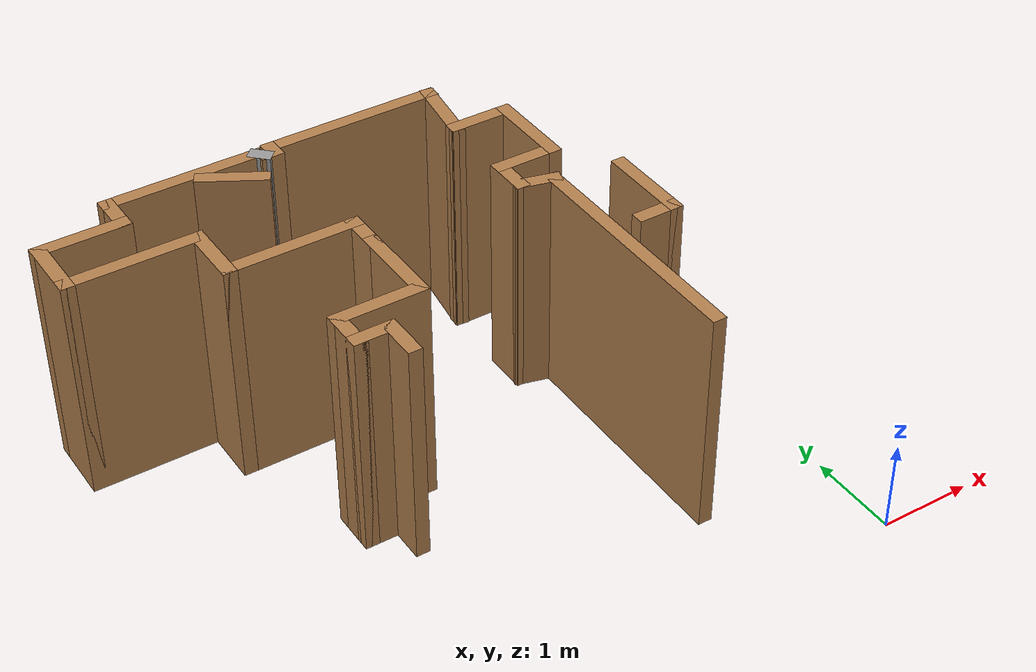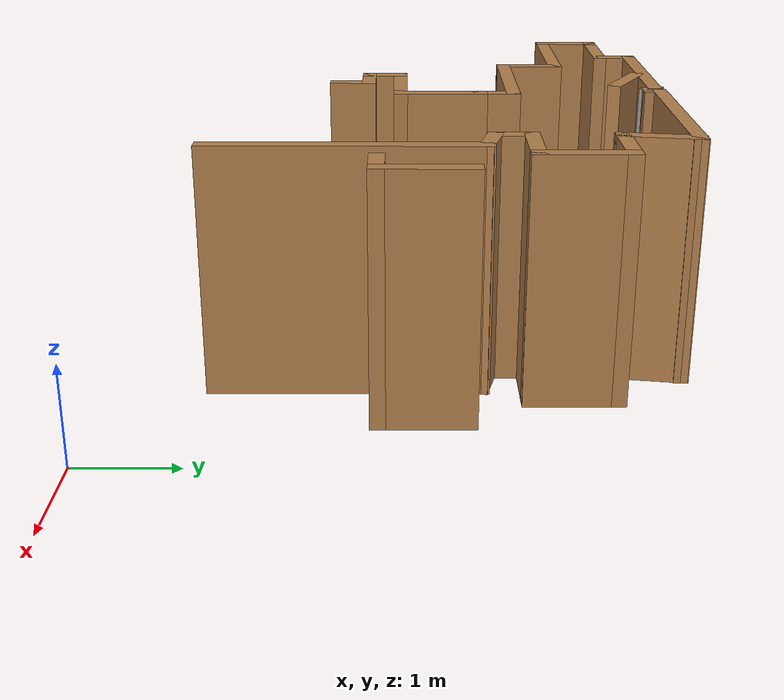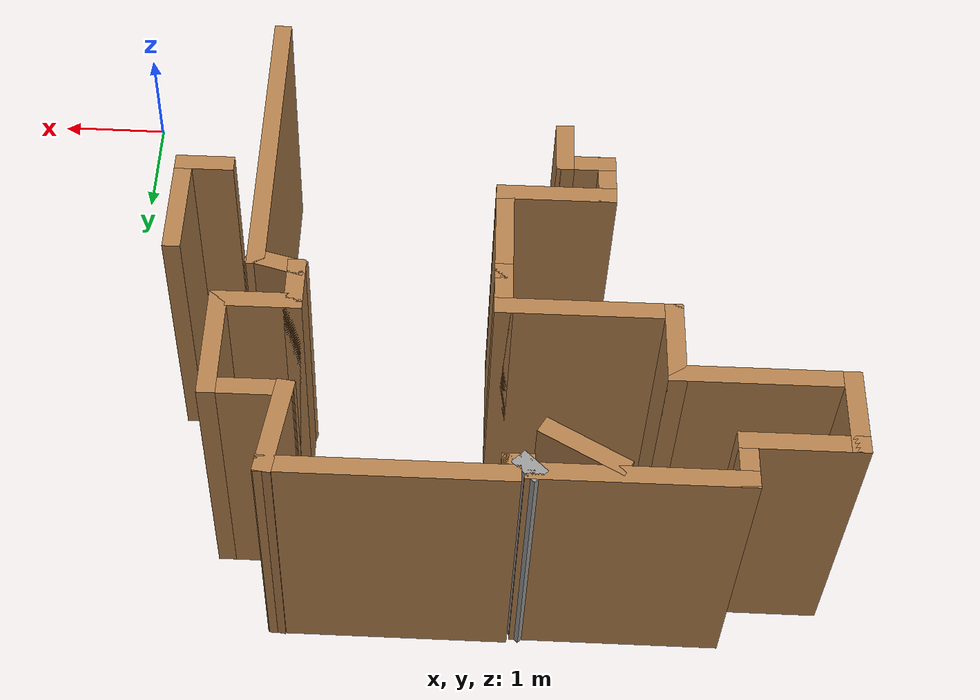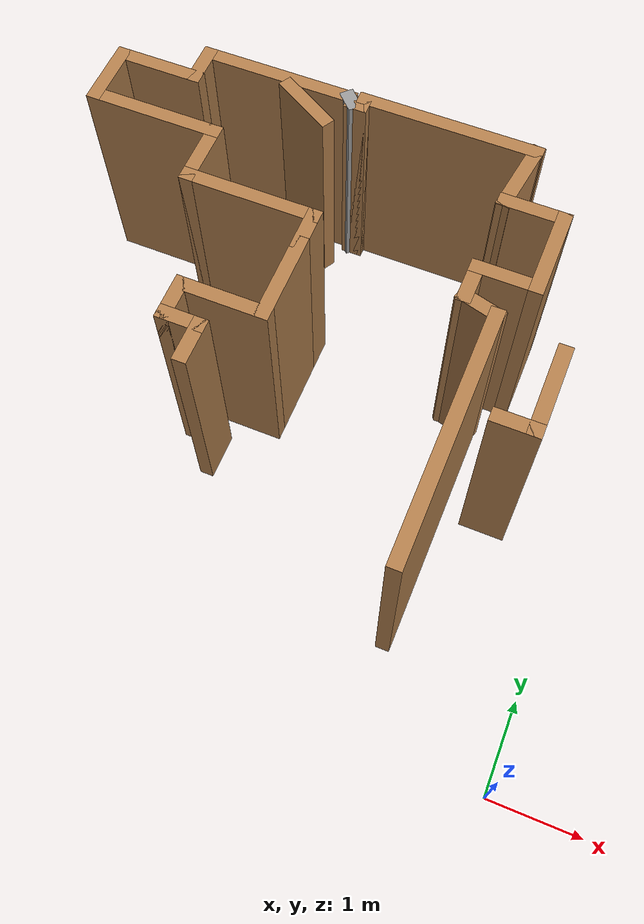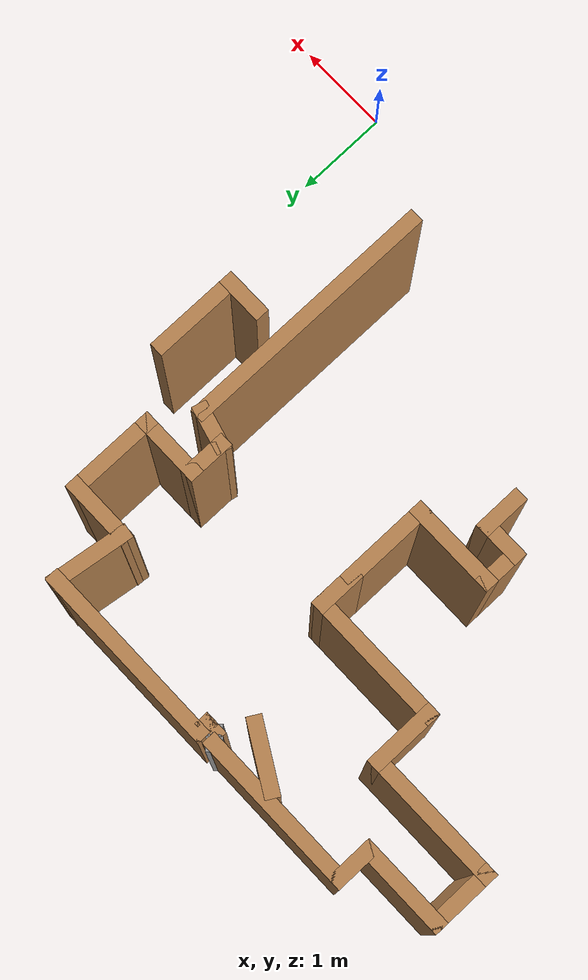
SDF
<sdf version="1.6">
 <model name="map_30">
  <link name="Wall_10">
   <pose>-6.15506 4.97315 0 0 0 -1.5708</pose>
   <visual name="Wall_10_Visual">
    <pose>0 0 1.25 0 -0 0</pose>
    <geometry><box><size>0.75 0.15 2.5</size></box></geometry>
    <material>
     <script><uri>file://media/materials/scripts/gazebo.material</uri><name>Gazebo/Wood</name></script>
     <ambient>1 1 1 1</ambient>
     <shader type="pixel"/>
    </material>
    <meta><layer>0</layer></meta>
   </visual>
   <collision name="Wall_10_Collision">
    <pose>0 0 1.25 0 -0 0</pose>
    <geometry><box><size>0.75 0.15 2.5</size></box></geometry>
    <surface>
     <friction>
      <ode><mu>1</mu><mu2>1</mu2><fdir1>0 0 0</fdir1><slip1>0</slip1><slip2>0</slip2></ode>
      <torsional>
       <coefficient>1</coefficient>
       <patch_radius>0</patch_radius>
       <surface_radius>0</surface_radius>
       <use_patch_radius>1</use_patch_radius>
       <ode><slip>0</slip></ode>
      </torsional>
     </friction>
     <bounce><restitution_coefficient>0</restitution_coefficient><threshold>1e+06</threshold></bounce>
     <contact>
      <collide_without_contact>0</collide_without_contact>
      <collide_without_contact_bitmask>1</collide_without_contact_bitmask>
      <collide_bitmask>1</collide_bitmask>
      <ode>
       <soft_cfm>0</soft_cfm>
       <soft_erp>0.2</soft_erp>
       <kp>1e+13</kp>
       <kd>1</kd>
       <max_vel>0.01</max_vel>
       <min_depth>0</min_depth>
      </ode>
      <bullet>
       <split_impulse>1</split_impulse>
       <split_impulse_penetration_threshold>-0.01</split_impulse_penetration_threshold>
       <soft_cfm>0</soft_cfm>
       <soft_erp>0.2</soft_erp>
       <kp>1e+13</kp>
       <kd>1</kd>
      </bullet>
     </contact>
    </surface>
   </collision>
  </link>
  <link name="Wall_13">
   <pose>-5.48006 4.67315 0 0 -0 0</pose>
   <visual name="Wall_13_Visual">
    <pose>0 0 1.25 0 -0 0</pose>
    <geometry><box><size>1.5 0.15 2.5</size></box></geometry>
    <material>
     <script><uri>file://media/materials/scripts/gazebo.material</uri><name>Gazebo/Wood</name></script>
     <ambient>1 1 1 1</ambient>
     <shader type="pixel"/>
    </material>
    <meta><layer>0</layer></meta>
   </visual>
   <collision name="Wall_13_Collision">
    <pose>0 0 1.25 0 -0 0</pose>
    <geometry><box><size>1.5 0.15 2.5</size></box></geometry>
    <surface>
     <friction>
      <ode><mu>1</mu><mu2>1</mu2><fdir1>0 0 0</fdir1><slip1>0</slip1><slip2>0</slip2></ode>
      <torsional>
       <coefficient>1</coefficient>
       <patch_radius>0</patch_radius>
       <surface_radius>0</surface_radius>
       <use_patch_radius>1</use_patch_radius>
       <ode><slip>0</slip></ode>
      </torsional>
     </friction>
     <bounce><restitution_coefficient>0</restitution_coefficient><threshold>1e+06</threshold></bounce>
     <contact>
      <collide_without_contact>0</collide_without_contact>
      <collide_without_contact_bitmask>1</collide_without_contact_bitmask>
      <collide_bitmask>1</collide_bitmask>
      <ode>
       <soft_cfm>0</soft_cfm>
       <soft_erp>0.2</soft_erp>
       <kp>1e+13</kp>
       <kd>1</kd>
       <max_vel>0.01</max_vel>
       <min_depth>0</min_depth>
      </ode>
      <bullet>
       <split_impulse>1</split_impulse>
       <split_impulse_penetration_threshold>-0.01</split_impulse_penetration_threshold>
       <soft_cfm>0</soft_cfm>
       <soft_erp>0.2</soft_erp>
       <kp>1e+13</kp>
       <kd>1</kd>
      </bullet>
     </contact>
    </surface>
   </collision>
  </link>
  <link name="Wall_14">
   <pose>-4.80506 4.37315 0 0 0 -1.5708</pose>
   <visual name="Wall_14_Visual">
    <pose>0 0 1.25 0 -0 0</pose>
    <geometry><box><size>0.75 0.15 2.5</size></box></geometry>
    <material>
     <script><uri>file://media/materials/scripts/gazebo.material</uri><name>Gazebo/Wood</name></script>
     <ambient>1 1 1 1</ambient>
     <shader type="pixel"/>
    </material>
    <meta><layer>0</layer></meta>
   </visual>
   <collision name="Wall_14_Collision">
    <pose>0 0 1.25 0 -0 0</pose>
    <geometry><box><size>0.75 0.15 2.5</size></box></geometry>
    <surface>
     <friction>
      <ode><mu>1</mu><mu2>1</mu2><fdir1>0 0 0</fdir1><slip1>0</slip1><slip2>0</slip2></ode>
      <torsional>
       <coefficient>1</coefficient>
       <patch_radius>0</patch_radius>
       <surface_radius>0</surface_radius>
       <use_patch_radius>1</use_patch_radius>
       <ode><slip>0</slip></ode>
      </torsional>
     </friction>
     <bounce><restitution_coefficient>0</restitution_coefficient><threshold>1e+06</threshold></bounce>
     <contact>
      <collide_without_contact>0</collide_without_contact>
      <collide_without_contact_bitmask>1</collide_without_contact_bitmask>
      <collide_bitmask>1</collide_bitmask>
      <ode>
       <soft_cfm>0</soft_cfm>
       <soft_erp>0.2</soft_erp>
       <kp>1e+13</kp>
       <kd>1</kd>
       <max_vel>0.01</max_vel>
       <min_depth>0</min_depth>
      </ode>
      <bullet>
       <split_impulse>1</split_impulse>
       <split_impulse_penetration_threshold>-0.01</split_impulse_penetration_threshold>
       <soft_cfm>0</soft_cfm>
       <soft_erp>0.2</soft_erp>
       <kp>1e+13</kp>
       <kd>1</kd>
      </bullet>
     </contact>
    </surface>
   </collision>
  </link>
  <link name="Wall_15">
   <pose>-4.13006 4.07315 0 0 -0 0</pose>
   <visual name="Wall_15_Visual">
    <pose>0 0 1.25 0 -0 0</pose>
    <geometry><box><size>1.5 0.15 2.5</size></box></geometry>
    <material>
     <script><uri>file://media/materials/scripts/gazebo.material</uri><name>Gazebo/Wood</name></script>
     <ambient>1 1 1 1</ambient>
     <shader type="pixel"/>
    </material>
    <meta><layer>0</layer></meta>
   </visual>
   <collision name="Wall_15_Collision">
    <pose>0 0 1.25 0 -0 0</pose>
    <geometry><box><size>1.5 0.15 2.5</size></box></geometry>
    <surface>
     <friction>
      <ode><mu>1</mu><mu2>1</mu2><fdir1>0 0 0</fdir1><slip1>0</slip1><slip2>0</slip2></ode>
      <torsional>
       <coefficient>1</coefficient>
       <patch_radius>0</patch_radius>
       <surface_radius>0</surface_radius>
       <use_patch_radius>1</use_patch_radius>
       <ode><slip>0</slip></ode>
      </torsional>
     </friction>
     <bounce><restitution_coefficient>0</restitution_coefficient><threshold>1e+06</threshold></bounce>
     <contact>
      <collide_without_contact>0</collide_without_contact>
      <collide_without_contact_bitmask>1</collide_without_contact_bitmask>
      <collide_bitmask>1</collide_bitmask>
      <ode>
       <soft_cfm>0</soft_cfm>
       <soft_erp>0.2</soft_erp>
       <kp>1e+13</kp>
       <kd>1</kd>
       <max_vel>0.01</max_vel>
       <min_depth>0</min_depth>
      </ode>
      <bullet>
       <split_impulse>1</split_impulse>
       <split_impulse_penetration_threshold>-0.01</split_impulse_penetration_threshold>
       <soft_cfm>0</soft_cfm>
       <soft_erp>0.2</soft_erp>
       <kp>1e+13</kp>
       <kd>1</kd>
      </bullet>
     </contact>
    </surface>
   </collision>
  </link>
  <link name="Wall_158">
   <pose>-0.744941 3.09118 0 0 0 -1.5708</pose>
   <visual name="Wall_158_Visual">
    <pose>0 0 1.25 0 -0 0</pose>
    <geometry><box><size>1 0.15 2.5</size></box></geometry>
    <material>
     <script><uri>file://media/materials/scripts/gazebo.material</uri><name>Gazebo/Wood</name></script>
     <ambient>1 1 1 1</ambient>
     <shader type="pixel"/>
    </material>
    <meta><layer>0</layer></meta>
   </visual>
   <collision name="Wall_158_Collision">
    <pose>0 0 1.25 0 -0 0</pose>
    <geometry><box><size>1 0.15 2.5</size></box></geometry>
    <surface>
     <friction>
      <ode><mu>1</mu><mu2>1</mu2><fdir1>0 0 0</fdir1><slip1>0</slip1><slip2>0</slip2></ode>
      <torsional>
       <coefficient>1</coefficient>
       <patch_radius>0</patch_radius>
       <surface_radius>0</surface_radius>
       <use_patch_radius>1</use_patch_radius>
       <ode><slip>0</slip></ode>
      </torsional>
     </friction>
     <bounce><restitution_coefficient>0</restitution_coefficient><threshold>1e+06</threshold></bounce>
     <contact>
      <collide_without_contact>0</collide_without_contact>
      <collide_without_contact_bitmask>1</collide_without_contact_bitmask>
      <collide_bitmask>1</collide_bitmask>
      <ode>
       <soft_cfm>0</soft_cfm>
       <soft_erp>0.2</soft_erp>
       <kp>1e+13</kp>
       <kd>1</kd>
       <max_vel>0.01</max_vel>
       <min_depth>0</min_depth>
      </ode>
      <bullet>
       <split_impulse>1</split_impulse>
       <split_impulse_penetration_threshold>-0.01</split_impulse_penetration_threshold>
       <soft_cfm>0</soft_cfm>
       <soft_erp>0.2</soft_erp>
       <kp>1e+13</kp>
       <kd>1</kd>
      </bullet>
     </contact>
    </surface>
   </collision>
  </link>
  <link name="Wall_16">
   <pose>-3.45506 3.89815 0 0 0 -1.5708</pose>
   <visual name="Wall_16_Visual">
    <pose>0 0 1.25 0 -0 0</pose>
    <geometry><box><size>0.5 0.15 2.5</size></box></geometry>
    <material>
     <script><uri>file://media/materials/scripts/gazebo.material</uri><name>Gazebo/Wood</name></script>
     <ambient>1 1 1 1</ambient>
     <shader type="pixel"/>
    </material>
    <meta><layer>0</layer></meta>
   </visual>
   <collision name="Wall_16_Collision">
    <pose>0 0 1.25 0 -0 0</pose>
    <geometry><box><size>0.5 0.15 2.5</size></box></geometry>
    <surface>
     <friction>
      <ode><mu>1</mu><mu2>1</mu2><fdir1>0 0 0</fdir1><slip1>0</slip1><slip2>0</slip2></ode>
      <torsional>
       <coefficient>1</coefficient>
       <patch_radius>0</patch_radius>
       <surface_radius>0</surface_radius>
       <use_patch_radius>1</use_patch_radius>
       <ode><slip>0</slip></ode>
      </torsional>
     </friction>
     <bounce><restitution_coefficient>0</restitution_coefficient><threshold>1e+06</threshold></bounce>
     <contact>
      <collide_without_contact>0</collide_without_contact>
      <collide_without_contact_bitmask>1</collide_without_contact_bitmask>
      <collide_bitmask>1</collide_bitmask>
      <ode>
       <soft_cfm>0</soft_cfm>
       <soft_erp>0.2</soft_erp>
       <kp>1e+13</kp>
       <kd>1</kd>
       <max_vel>0.01</max_vel>
       <min_depth>0</min_depth>
      </ode>
      <bullet>
       <split_impulse>1</split_impulse>
       <split_impulse_penetration_threshold>-0.01</split_impulse_penetration_threshold>
       <soft_cfm>0</soft_cfm>
       <soft_erp>0.2</soft_erp>
       <kp>1e+13</kp>
       <kd>1</kd>
      </bullet>
     </contact>
    </surface>
   </collision>
  </link>
  <link name="Wall_161">
   <pose>-0.919941 2.66618 0 0 -0 3.14159</pose>
   <visual name="Wall_161_Visual">
    <pose>0 0 1.25 0 -0 0</pose>
    <geometry><box><size>0.5 0.15 2.5</size></box></geometry>
    <material>
     <script><uri>file://media/materials/scripts/gazebo.material</uri><name>Gazebo/Wood</name></script>
     <ambient>1 1 1 1</ambient>
     <shader type="pixel"/>
    </material>
    <meta><layer>0</layer></meta>
   </visual>
   <collision name="Wall_161_Collision">
    <pose>0 0 1.25 0 -0 0</pose>
    <geometry><box><size>0.5 0.15 2.5</size></box></geometry>
    <surface>
     <friction>
      <ode><mu>1</mu><mu2>1</mu2><fdir1>0 0 0</fdir1><slip1>0</slip1><slip2>0</slip2></ode>
      <torsional>
       <coefficient>1</coefficient>
       <patch_radius>0</patch_radius>
       <surface_radius>0</surface_radius>
       <use_patch_radius>1</use_patch_radius>
       <ode><slip>0</slip></ode>
      </torsional>
     </friction>
     <bounce><restitution_coefficient>0</restitution_coefficient><threshold>1e+06</threshold></bounce>
     <contact>
      <collide_without_contact>0</collide_without_contact>
      <collide_without_contact_bitmask>1</collide_without_contact_bitmask>
      <collide_bitmask>1</collide_bitmask>
      <ode>
       <soft_cfm>0</soft_cfm>
       <soft_erp>0.2</soft_erp>
       <kp>1e+13</kp>
       <kd>1</kd>
       <max_vel>0.01</max_vel>
       <min_depth>0</min_depth>
      </ode>
      <bullet>
       <split_impulse>1</split_impulse>
       <split_impulse_penetration_threshold>-0.01</split_impulse_penetration_threshold>
       <soft_cfm>0</soft_cfm>
       <soft_erp>0.2</soft_erp>
       <kp>1e+13</kp>
       <kd>1</kd>
      </bullet>
     </contact>
    </surface>
   </collision>
  </link>
  <link name="Wall_164">
   <pose>-1.44494 2.36618 0 0 -0 1.5708</pose>
   <visual name="Wall_164_Visual">
    <pose>0 0 1.25 0 -0 0</pose>
    <geometry><box><size>2.75 0.15 2.5</size></box></geometry>
    <material>
     <script><uri>file://media/materials/scripts/gazebo.material</uri><name>Gazebo/Wood</name></script>
     <ambient>1 1 1 1</ambient>
     <shader type="pixel"/>
    </material>
    <meta><layer>0</layer></meta>
   </visual>
   <collision name="Wall_164_Collision">
    <pose>0 0 1.25 0 -0 0</pose>
    <geometry><box><size>2.75 0.15 2.5</size></box></geometry>
    <surface>
     <friction>
      <ode><mu>1</mu><mu2>1</mu2><fdir1>0 0 0</fdir1><slip1>0</slip1><slip2>0</slip2></ode>
      <torsional>
       <coefficient>1</coefficient>
       <patch_radius>0</patch_radius>
       <surface_radius>0</surface_radius>
       <use_patch_radius>1</use_patch_radius>
       <ode><slip>0</slip></ode>
      </torsional>
     </friction>
     <bounce><restitution_coefficient>0</restitution_coefficient><threshold>1e+06</threshold></bounce>
     <contact>
      <collide_without_contact>0</collide_without_contact>
      <collide_without_contact_bitmask>1</collide_without_contact_bitmask>
      <collide_bitmask>1</collide_bitmask>
      <ode>
       <soft_cfm>0</soft_cfm>
       <soft_erp>0.2</soft_erp>
       <kp>1e+13</kp>
       <kd>1</kd>
       <max_vel>0.01</max_vel>
       <min_depth>0</min_depth>
      </ode>
      <bullet>
       <split_impulse>1</split_impulse>
       <split_impulse_penetration_threshold>-0.01</split_impulse_penetration_threshold>
       <soft_cfm>0</soft_cfm>
       <soft_erp>0.2</soft_erp>
       <kp>1e+13</kp>
       <kd>1</kd>
      </bullet>
     </contact>
    </surface>
   </collision>
  </link>
  <link name="Wall_165">
   <pose>-1.61398 3.71148 0 0 -0 2.87979</pose>
   <visual name="Wall_165_Visual">
    <pose>0 0 1.25 0 -0 0</pose>
    <geometry><box><size>0.5 0.15 2.5</size></box></geometry>
    <material>
     <script><uri>file://media/materials/scripts/gazebo.material</uri><name>Gazebo/Wood</name></script>
     <ambient>1 1 1 1</ambient>
     <shader type="pixel"/>
    </material>
    <meta><layer>0</layer></meta>
   </visual>
   <collision name="Wall_165_Collision">
    <pose>0 0 1.25 0 -0 0</pose>
    <geometry><box><size>0.5 0.15 2.5</size></box></geometry>
    <surface>
     <friction>
      <ode><mu>1</mu><mu2>1</mu2><fdir1>0 0 0</fdir1><slip1>0</slip1><slip2>0</slip2></ode>
      <torsional>
       <coefficient>1</coefficient>
       <patch_radius>0</patch_radius>
       <surface_radius>0</surface_radius>
       <use_patch_radius>1</use_patch_radius>
       <ode><slip>0</slip></ode>
      </torsional>
     </friction>
     <bounce><restitution_coefficient>0</restitution_coefficient><threshold>1e+06</threshold></bounce>
     <contact>
      <collide_without_contact>0</collide_without_contact>
      <collide_without_contact_bitmask>1</collide_without_contact_bitmask>
      <collide_bitmask>1</collide_bitmask>
      <ode>
       <soft_cfm>0</soft_cfm>
       <soft_erp>0.2</soft_erp>
       <kp>1e+13</kp>
       <kd>1</kd>
       <max_vel>0.01</max_vel>
       <min_depth>0</min_depth>
      </ode>
      <bullet>
       <split_impulse>1</split_impulse>
       <split_impulse_penetration_threshold>-0.01</split_impulse_penetration_threshold>
       <soft_cfm>0</soft_cfm>
       <soft_erp>0.2</soft_erp>
       <kp>1e+13</kp>
       <kd>1</kd>
      </bullet>
     </contact>
    </surface>
   </collision>
  </link>
  <link name="Wall_166">
   <pose>-1.78302 3.93177 0 0 -0 1.5708</pose>
   <visual name="Wall_166_Visual">
    <pose>0 0 1.25 0 -0 0</pose>
    <geometry><box><size>0.5 0.15 2.5</size></box></geometry>
    <material>
     <script><uri>file://media/materials/scripts/gazebo.material</uri><name>Gazebo/Wood</name></script>
     <ambient>1 1 1 1</ambient>
     <shader type="pixel"/>
    </material>
    <meta><layer>0</layer></meta>
   </visual>
   <collision name="Wall_166_Collision">
    <pose>0 0 1.25 0 -0 0</pose>
    <geometry><box><size>0.5 0.15 2.5</size></box></geometry>
    <surface>
     <friction>
      <ode><mu>1</mu><mu2>1</mu2><fdir1>0 0 0</fdir1><slip1>0</slip1><slip2>0</slip2></ode>
      <torsional>
       <coefficient>1</coefficient>
       <patch_radius>0</patch_radius>
       <surface_radius>0</surface_radius>
       <use_patch_radius>1</use_patch_radius>
       <ode><slip>0</slip></ode>
      </torsional>
     </friction>
     <bounce><restitution_coefficient>0</restitution_coefficient><threshold>1e+06</threshold></bounce>
     <contact>
      <collide_without_contact>0</collide_without_contact>
      <collide_without_contact_bitmask>1</collide_without_contact_bitmask>
      <collide_bitmask>1</collide_bitmask>
      <ode>
       <soft_cfm>0</soft_cfm>
       <soft_erp>0.2</soft_erp>
       <kp>1e+13</kp>
       <kd>1</kd>
       <max_vel>0.01</max_vel>
       <min_depth>0</min_depth>
      </ode>
      <bullet>
       <split_impulse>1</split_impulse>
       <split_impulse_penetration_threshold>-0.01</split_impulse_penetration_threshold>
       <soft_cfm>0</soft_cfm>
       <soft_erp>0.2</soft_erp>
       <kp>1e+13</kp>
       <kd>1</kd>
      </bullet>
     </contact>
    </surface>
   </collision>
  </link>
  <link name="Wall_171">
   <pose>-1.48301 4.10677 0 0 -0 0</pose>
   <visual name="Wall_171_Visual">
    <pose>0 0 1.25 0 -0 0</pose>
    <geometry><box><size>0.75 0.15 2.5</size></box></geometry>
    <material>
     <script><uri>file://media/materials/scripts/gazebo.material</uri><name>Gazebo/Wood</name></script>
     <ambient>1 1 1 1</ambient>
     <shader type="pixel"/>
    </material>
    <meta><layer>0</layer></meta>
   </visual>
   <collision name="Wall_171_Collision">
    <pose>0 0 1.25 0 -0 0</pose>
    <geometry><box><size>0.75 0.15 2.5</size></box></geometry>
    <surface>
     <friction>
      <ode><mu>1</mu><mu2>1</mu2><fdir1>0 0 0</fdir1><slip1>0</slip1><slip2>0</slip2></ode>
      <torsional>
       <coefficient>1</coefficient>
       <patch_radius>0</patch_radius>
       <surface_radius>0</surface_radius>
       <use_patch_radius>1</use_patch_radius>
       <ode><slip>0</slip></ode>
      </torsional>
     </friction>
     <bounce><restitution_coefficient>0</restitution_coefficient><threshold>1e+06</threshold></bounce>
     <contact>
      <collide_without_contact>0</collide_without_contact>
      <collide_without_contact_bitmask>1</collide_without_contact_bitmask>
      <collide_bitmask>1</collide_bitmask>
      <ode>
       <soft_cfm>0</soft_cfm>
       <soft_erp>0.2</soft_erp>
       <kp>1e+13</kp>
       <kd>1</kd>
       <max_vel>0.01</max_vel>
       <min_depth>0</min_depth>
      </ode>
      <bullet>
       <split_impulse>1</split_impulse>
       <split_impulse_penetration_threshold>-0.01</split_impulse_penetration_threshold>
       <soft_cfm>0</soft_cfm>
       <soft_erp>0.2</soft_erp>
       <kp>1e+13</kp>
       <kd>1</kd>
      </bullet>
     </contact>
    </surface>
   </collision>
  </link>
  <link name="Wall_172">
   <pose>-1.18301 4.53177 0 0 -0 1.5708</pose>
   <visual name="Wall_172_Visual">
    <pose>0 0 1.25 0 -0 0</pose>
    <geometry><box><size>1 0.15 2.5</size></box></geometry>
    <material>
     <script><uri>file://media/materials/scripts/gazebo.material</uri><name>Gazebo/Wood</name></script>
     <ambient>1 1 1 1</ambient>
     <shader type="pixel"/>
    </material>
    <meta><layer>0</layer></meta>
   </visual>
   <collision name="Wall_172_Collision">
    <pose>0 0 1.25 0 -0 0</pose>
    <geometry><box><size>1 0.15 2.5</size></box></geometry>
    <surface>
     <friction>
      <ode><mu>1</mu><mu2>1</mu2><fdir1>0 0 0</fdir1><slip1>0</slip1><slip2>0</slip2></ode>
      <torsional>
       <coefficient>1</coefficient>
       <patch_radius>0</patch_radius>
       <surface_radius>0</surface_radius>
       <use_patch_radius>1</use_patch_radius>
       <ode><slip>0</slip></ode>
      </torsional>
     </friction>
     <bounce><restitution_coefficient>0</restitution_coefficient><threshold>1e+06</threshold></bounce>
     <contact>
      <collide_without_contact>0</collide_without_contact>
      <collide_without_contact_bitmask>1</collide_without_contact_bitmask>
      <collide_bitmask>1</collide_bitmask>
      <ode>
       <soft_cfm>0</soft_cfm>
       <soft_erp>0.2</soft_erp>
       <kp>1e+13</kp>
       <kd>1</kd>
       <max_vel>0.01</max_vel>
       <min_depth>0</min_depth>
      </ode>
      <bullet>
       <split_impulse>1</split_impulse>
       <split_impulse_penetration_threshold>-0.01</split_impulse_penetration_threshold>
       <soft_cfm>0</soft_cfm>
       <soft_erp>0.2</soft_erp>
       <kp>1e+13</kp>
       <kd>1</kd>
      </bullet>
     </contact>
    </surface>
   </collision>
  </link>
  <link name="Wall_173">
   <pose>-1.48301 4.95677 0 0 -0 3.14159</pose>
   <visual name="Wall_173_Visual">
    <pose>0 0 1.25 0 -0 0</pose>
    <geometry><box><size>0.75 0.15 2.5</size></box></geometry>
    <material>
     <script><uri>file://media/materials/scripts/gazebo.material</uri><name>Gazebo/Wood</name></script>
     <ambient>1 1 1 1</ambient>
     <shader type="pixel"/>
    </material>
    <meta><layer>0</layer></meta>
   </visual>
   <collision name="Wall_173_Collision">
    <pose>0 0 1.25 0 -0 0</pose>
    <geometry><box><size>0.75 0.15 2.5</size></box></geometry>
    <surface>
     <friction>
      <ode><mu>1</mu><mu2>1</mu2><fdir1>0 0 0</fdir1><slip1>0</slip1><slip2>0</slip2></ode>
      <torsional>
       <coefficient>1</coefficient>
       <patch_radius>0</patch_radius>
       <surface_radius>0</surface_radius>
       <use_patch_radius>1</use_patch_radius>
       <ode><slip>0</slip></ode>
      </torsional>
     </friction>
     <bounce><restitution_coefficient>0</restitution_coefficient><threshold>1e+06</threshold></bounce>
     <contact>
      <collide_without_contact>0</collide_without_contact>
      <collide_without_contact_bitmask>1</collide_without_contact_bitmask>
      <collide_bitmask>1</collide_bitmask>
      <ode>
       <soft_cfm>0</soft_cfm>
       <soft_erp>0.2</soft_erp>
       <kp>1e+13</kp>
       <kd>1</kd>
       <max_vel>0.01</max_vel>
       <min_depth>0</min_depth>
      </ode>
      <bullet>
       <split_impulse>1</split_impulse>
       <split_impulse_penetration_threshold>-0.01</split_impulse_penetration_threshold>
       <soft_cfm>0</soft_cfm>
       <soft_erp>0.2</soft_erp>
       <kp>1e+13</kp>
       <kd>1</kd>
      </bullet>
     </contact>
    </surface>
   </collision>
  </link>
  <link name="Wall_174">
   <pose>-1.73368 5.3046 0 0 -0 1.42991</pose>
   <visual name="Wall_174_Visual">
    <pose>0 0 1.25 0 -0 0</pose>
    <geometry><box><size>0.852629 0.15 2.5</size></box></geometry>
    <material>
     <script><uri>file://media/materials/scripts/gazebo.material</uri><name>Gazebo/Wood</name></script>
     <ambient>1 1 1 1</ambient>
     <shader type="pixel"/>
    </material>
    <meta><layer>0</layer></meta>
   </visual>
   <collision name="Wall_174_Collision">
    <pose>0 0 1.25 0 -0 0</pose>
    <geometry><box><size>0.852629 0.15 2.5</size></box></geometry>
    <surface>
     <friction>
      <ode><mu>1</mu><mu2>1</mu2><fdir1>0 0 0</fdir1><slip1>0</slip1><slip2>0</slip2></ode>
      <torsional>
       <coefficient>1</coefficient>
       <patch_radius>0</patch_radius>
       <surface_radius>0</surface_radius>
       <use_patch_radius>1</use_patch_radius>
       <ode><slip>0</slip></ode>
      </torsional>
     </friction>
     <bounce><restitution_coefficient>0</restitution_coefficient><threshold>1e+06</threshold></bounce>
     <contact>
      <collide_without_contact>0</collide_without_contact>
      <collide_without_contact_bitmask>1</collide_without_contact_bitmask>
      <collide_bitmask>1</collide_bitmask>
      <ode>
       <soft_cfm>0</soft_cfm>
       <soft_erp>0.2</soft_erp>
       <kp>1e+13</kp>
       <kd>1</kd>
       <max_vel>0.01</max_vel>
       <min_depth>0</min_depth>
      </ode>
      <bullet>
       <split_impulse>1</split_impulse>
       <split_impulse_penetration_threshold>-0.01</split_impulse_penetration_threshold>
       <soft_cfm>0</soft_cfm>
       <soft_erp>0.2</soft_erp>
       <kp>1e+13</kp>
       <kd>1</kd>
      </bullet>
     </contact>
    </surface>
   </collision>
  </link>
  <link name="Wall_182">
   <pose>-4.08456 5.38678 0 0 0 -0.523599</pose>
   <visual name="Wall_182_Visual">
    <pose>0 0 1.25 0 -0 0</pose>
    <geometry><box><size>0.75 0.15 2.5</size></box></geometry>
    <material>
     <script><uri>file://media/materials/scripts/gazebo.material</uri><name>Gazebo/Wood</name></script>
     <ambient>1 1 1 1</ambient>
     <shader type="pixel"/>
    </material>
    <meta><layer>0</layer></meta>
   </visual>
   <collision name="Wall_182_Collision">
    <pose>0 0 1.25 0 -0 0</pose>
    <geometry><box><size>0.75 0.15 2.5</size></box></geometry>
    <surface>
     <friction>
      <ode><mu>1</mu><mu2>1</mu2><fdir1>0 0 0</fdir1><slip1>0</slip1><slip2>0</slip2></ode>
      <torsional>
       <coefficient>1</coefficient>
       <patch_radius>0</patch_radius>
       <surface_radius>0</surface_radius>
       <use_patch_radius>1</use_patch_radius>
       <ode><slip>0</slip></ode>
      </torsional>
     </friction>
     <bounce><restitution_coefficient>0</restitution_coefficient><threshold>1e+06</threshold></bounce>
     <contact>
      <collide_without_contact>0</collide_without_contact>
      <collide_without_contact_bitmask>1</collide_without_contact_bitmask>
      <collide_bitmask>1</collide_bitmask>
      <ode>
       <soft_cfm>0</soft_cfm>
       <soft_erp>0.2</soft_erp>
       <kp>1e+13</kp>
       <kd>1</kd>
       <max_vel>0.01</max_vel>
       <min_depth>0</min_depth>
      </ode>
      <bullet>
       <split_impulse>1</split_impulse>
       <split_impulse_penetration_threshold>-0.01</split_impulse_penetration_threshold>
       <soft_cfm>0</soft_cfm>
       <soft_erp>0.2</soft_erp>
       <kp>1e+13</kp>
       <kd>1</kd>
      </bullet>
     </contact>
    </surface>
   </collision>
  </link>
  <link name="Wall_21">
   <pose>-3.45506 3.29815 0 0 0 -1.5708</pose>
   <visual name="Wall_21_Visual">
    <pose>0 0 1.25 0 -0 0</pose>
    <geometry><box><size>1 0.15 2.5</size></box></geometry>
    <material>
     <script><uri>file://media/materials/scripts/gazebo.material</uri><name>Gazebo/Wood</name></script>
     <ambient>1 1 1 1</ambient>
     <shader type="pixel"/>
    </material>
    <meta><layer>0</layer></meta>
   </visual>
   <collision name="Wall_21_Collision">
    <pose>0 0 1.25 0 -0 0</pose>
    <geometry><box><size>1 0.15 2.5</size></box></geometry>
    <surface>
     <friction>
      <ode><mu>1</mu><mu2>1</mu2><fdir1>0 0 0</fdir1><slip1>0</slip1><slip2>0</slip2></ode>
      <torsional>
       <coefficient>1</coefficient>
       <patch_radius>0</patch_radius>
       <surface_radius>0</surface_radius>
       <use_patch_radius>1</use_patch_radius>
       <ode><slip>0</slip></ode>
      </torsional>
     </friction>
     <bounce><restitution_coefficient>0</restitution_coefficient><threshold>1e+06</threshold></bounce>
     <contact>
      <collide_without_contact>0</collide_without_contact>
      <collide_without_contact_bitmask>1</collide_without_contact_bitmask>
      <collide_bitmask>1</collide_bitmask>
      <ode>
       <soft_cfm>0</soft_cfm>
       <soft_erp>0.2</soft_erp>
       <kp>1e+13</kp>
       <kd>1</kd>
       <max_vel>0.01</max_vel>
       <min_depth>0</min_depth>
      </ode>
      <bullet>
       <split_impulse>1</split_impulse>
       <split_impulse_penetration_threshold>-0.01</split_impulse_penetration_threshold>
       <soft_cfm>0</soft_cfm>
       <soft_erp>0.2</soft_erp>
       <kp>1e+13</kp>
       <kd>1</kd>
      </bullet>
     </contact>
    </surface>
   </collision>
  </link>
  <link name="Wall_22">
   <pose>-3.88006 2.87315 0 0 -0 3.14159</pose>
   <visual name="Wall_22_Visual">
    <pose>0 0 1.25 0 -0 0</pose>
    <geometry><box><size>1 0.15 2.5</size></box></geometry>
    <material>
     <script><uri>file://media/materials/scripts/gazebo.material</uri><name>Gazebo/Wood</name></script>
     <ambient>1 1 1 1</ambient>
     <shader type="pixel"/>
    </material>
    <meta><layer>0</layer></meta>
   </visual>
   <collision name="Wall_22_Collision">
    <pose>0 0 1.25 0 -0 0</pose>
    <geometry><box><size>1 0.15 2.5</size></box></geometry>
    <surface>
     <friction>
      <ode><mu>1</mu><mu2>1</mu2><fdir1>0 0 0</fdir1><slip1>0</slip1><slip2>0</slip2></ode>
      <torsional>
       <coefficient>1</coefficient>
       <patch_radius>0</patch_radius>
       <surface_radius>0</surface_radius>
       <use_patch_radius>1</use_patch_radius>
       <ode><slip>0</slip></ode>
      </torsional>
     </friction>
     <bounce><restitution_coefficient>0</restitution_coefficient><threshold>1e+06</threshold></bounce>
     <contact>
      <collide_without_contact>0</collide_without_contact>
      <collide_without_contact_bitmask>1</collide_without_contact_bitmask>
      <collide_bitmask>1</collide_bitmask>
      <ode>
       <soft_cfm>0</soft_cfm>
       <soft_erp>0.2</soft_erp>
       <kp>1e+13</kp>
       <kd>1</kd>
       <max_vel>0.01</max_vel>
       <min_depth>0</min_depth>
      </ode>
      <bullet>
       <split_impulse>1</split_impulse>
       <split_impulse_penetration_threshold>-0.01</split_impulse_penetration_threshold>
       <soft_cfm>0</soft_cfm>
       <soft_erp>0.2</soft_erp>
       <kp>1e+13</kp>
       <kd>1</kd>
      </bullet>
     </contact>
    </surface>
   </collision>
  </link>
  <link name="Wall_23">
   <pose>-4.30506 2.69815 0 0 0 -1.5708</pose>
   <visual name="Wall_23_Visual">
    <pose>0 0 1.25 0 -0 0</pose>
    <geometry><box><size>0.5 0.15 2.5</size></box></geometry>
    <material>
     <script><uri>file://media/materials/scripts/gazebo.material</uri><name>Gazebo/Wood</name></script>
     <ambient>1 1 1 1</ambient>
     <shader type="pixel"/>
    </material>
    <meta><layer>0</layer></meta>
   </visual>
   <collision name="Wall_23_Collision">
    <pose>0 0 1.25 0 -0 0</pose>
    <geometry><box><size>0.5 0.15 2.5</size></box></geometry>
    <surface>
     <friction>
      <ode><mu>1</mu><mu2>1</mu2><fdir1>0 0 0</fdir1><slip1>0</slip1><slip2>0</slip2></ode>
      <torsional>
       <coefficient>1</coefficient>
       <patch_radius>0</patch_radius>
       <surface_radius>0</surface_radius>
       <use_patch_radius>1</use_patch_radius>
       <ode><slip>0</slip></ode>
      </torsional>
     </friction>
     <bounce><restitution_coefficient>0</restitution_coefficient><threshold>1e+06</threshold></bounce>
     <contact>
      <collide_without_contact>0</collide_without_contact>
      <collide_without_contact_bitmask>1</collide_without_contact_bitmask>
      <collide_bitmask>1</collide_bitmask>
      <ode>
       <soft_cfm>0</soft_cfm>
       <soft_erp>0.2</soft_erp>
       <kp>1e+13</kp>
       <kd>1</kd>
       <max_vel>0.01</max_vel>
       <min_depth>0</min_depth>
      </ode>
      <bullet>
       <split_impulse>1</split_impulse>
       <split_impulse_penetration_threshold>-0.01</split_impulse_penetration_threshold>
       <soft_cfm>0</soft_cfm>
       <soft_erp>0.2</soft_erp>
       <kp>1e+13</kp>
       <kd>1</kd>
      </bullet>
     </contact>
    </surface>
   </collision>
  </link>
  <link name="Wall_24">
   <pose>-4.13006 2.52315 0 0 -0 0</pose>
   <visual name="Wall_24_Visual">
    <pose>0 0 1.25 0 -0 0</pose>
    <geometry><box><size>0.5 0.15 2.5</size></box></geometry>
    <material>
     <script><uri>file://media/materials/scripts/gazebo.material</uri><name>Gazebo/Wood</name></script>
     <ambient>1 1 1 1</ambient>
     <shader type="pixel"/>
    </material>
    <meta><layer>0</layer></meta>
   </visual>
   <collision name="Wall_24_Collision">
    <pose>0 0 1.25 0 -0 0</pose>
    <geometry><box><size>0.5 0.15 2.5</size></box></geometry>
    <surface>
     <friction>
      <ode><mu>1</mu><mu2>1</mu2><fdir1>0 0 0</fdir1><slip1>0</slip1><slip2>0</slip2></ode>
      <torsional>
       <coefficient>1</coefficient>
       <patch_radius>0</patch_radius>
       <surface_radius>0</surface_radius>
       <use_patch_radius>1</use_patch_radius>
       <ode><slip>0</slip></ode>
      </torsional>
     </friction>
     <bounce><restitution_coefficient>0</restitution_coefficient><threshold>1e+06</threshold></bounce>
     <contact>
      <collide_without_contact>0</collide_without_contact>
      <collide_without_contact_bitmask>1</collide_without_contact_bitmask>
      <collide_bitmask>1</collide_bitmask>
      <ode>
       <soft_cfm>0</soft_cfm>
       <soft_erp>0.2</soft_erp>
       <kp>1e+13</kp>
       <kd>1</kd>
       <max_vel>0.01</max_vel>
       <min_depth>0</min_depth>
      </ode>
      <bullet>
       <split_impulse>1</split_impulse>
       <split_impulse_penetration_threshold>-0.01</split_impulse_penetration_threshold>
       <soft_cfm>0</soft_cfm>
       <soft_erp>0.2</soft_erp>
       <kp>1e+13</kp>
       <kd>1</kd>
      </bullet>
     </contact>
    </surface>
   </collision>
  </link>
  <link name="Wall_25">
   <pose>-3.95506 2.34815 0 0 0 -1.5708</pose>
   <visual name="Wall_25_Visual">
    <pose>0 0 1.25 0 -0 0</pose>
    <geometry><box><size>0.5 0.15 2.5</size></box></geometry>
    <material>
     <script><uri>file://media/materials/scripts/gazebo.material</uri><name>Gazebo/Wood</name></script>
     <ambient>1 1 1 1</ambient>
     <shader type="pixel"/>
    </material>
    <meta><layer>0</layer></meta>
   </visual>
   <collision name="Wall_25_Collision">
    <pose>0 0 1.25 0 -0 0</pose>
    <geometry><box><size>0.5 0.15 2.5</size></box></geometry>
    <surface>
     <friction>
      <ode><mu>1</mu><mu2>1</mu2><fdir1>0 0 0</fdir1><slip1>0</slip1><slip2>0</slip2></ode>
      <torsional>
       <coefficient>1</coefficient>
       <patch_radius>0</patch_radius>
       <surface_radius>0</surface_radius>
       <use_patch_radius>1</use_patch_radius>
       <ode><slip>0</slip></ode>
      </torsional>
     </friction>
     <bounce><restitution_coefficient>0</restitution_coefficient><threshold>1e+06</threshold></bounce>
     <contact>
      <collide_without_contact>0</collide_without_contact>
      <collide_without_contact_bitmask>1</collide_without_contact_bitmask>
      <collide_bitmask>1</collide_bitmask>
      <ode>
       <soft_cfm>0</soft_cfm>
       <soft_erp>0.2</soft_erp>
       <kp>1e+13</kp>
       <kd>1</kd>
       <max_vel>0.01</max_vel>
       <min_depth>0</min_depth>
      </ode>
      <bullet>
       <split_impulse>1</split_impulse>
       <split_impulse_penetration_threshold>-0.01</split_impulse_penetration_threshold>
       <soft_cfm>0</soft_cfm>
       <soft_erp>0.2</soft_erp>
       <kp>1e+13</kp>
       <kd>1</kd>
      </bullet>
     </contact>
    </surface>
   </collision>
  </link>
  <link name="Wall_3">
   <pose>-2.60935 5.65244 0 0 -0 3.14159</pose>
   <visual name="Wall_3_Visual">
    <pose>0 0 1.25 0 -0 0</pose>
    <geometry><box><size>2 0.15 2.5</size></box></geometry>
    <material>
     <script><uri>file://media/materials/scripts/gazebo.material</uri><name>Gazebo/Wood</name></script>
     <ambient>1 1 1 1</ambient>
     <shader type="pixel"/>
    </material>
    <meta><layer>0</layer></meta>
   </visual>
   <collision name="Wall_3_Collision">
    <pose>0 0 1.25 0 -0 0</pose>
    <geometry><box><size>2 0.15 2.5</size></box></geometry>
    <surface>
     <friction>
      <ode><mu>1</mu><mu2>1</mu2><fdir1>0 0 0</fdir1><slip1>0</slip1><slip2>0</slip2></ode>
      <torsional>
       <coefficient>1</coefficient>
       <patch_radius>0</patch_radius>
       <surface_radius>0</surface_radius>
       <use_patch_radius>1</use_patch_radius>
       <ode><slip>0</slip></ode>
      </torsional>
     </friction>
     <bounce><restitution_coefficient>0</restitution_coefficient><threshold>1e+06</threshold></bounce>
     <contact>
      <collide_without_contact>0</collide_without_contact>
      <collide_without_contact_bitmask>1</collide_without_contact_bitmask>
      <collide_bitmask>1</collide_bitmask>
      <ode>
       <soft_cfm>0</soft_cfm>
       <soft_erp>0.2</soft_erp>
       <kp>1e+13</kp>
       <kd>1</kd>
       <max_vel>0.01</max_vel>
       <min_depth>0</min_depth>
      </ode>
      <bullet>
       <split_impulse>1</split_impulse>
       <split_impulse_penetration_threshold>-0.01</split_impulse_penetration_threshold>
       <soft_cfm>0</soft_cfm>
       <soft_erp>0.2</soft_erp>
       <kp>1e+13</kp>
       <kd>1</kd>
      </bullet>
     </contact>
    </surface>
   </collision>
  </link>
  <link name="Wall_4">
   <pose>-3.53435 5.60244 0 0 0 -1.5708</pose>
   <visual name="Wall_4_Visual">
    <pose>0 0 1.25 0 -0 0</pose>
    <geometry><box><size>0.25 0.15 2.5</size></box></geometry>
    <material>
     <script><uri>file://media/materials/scripts/gazebo.material</uri><name>Gazebo/Wood</name></script>
     <ambient>1 1 1 1</ambient>
     <shader type="pixel"/>
    </material>
    <meta><layer>0</layer></meta>
   </visual>
   <collision name="Wall_4_Collision">
    <pose>0 0 1.25 0 -0 0</pose>
    <geometry><box><size>0.25 0.15 2.5</size></box></geometry>
    <surface>
     <friction>
      <ode><mu>1</mu><mu2>1</mu2><fdir1>0 0 0</fdir1><slip1>0</slip1><slip2>0</slip2></ode>
      <torsional>
       <coefficient>1</coefficient>
       <patch_radius>0</patch_radius>
       <surface_radius>0</surface_radius>
       <use_patch_radius>1</use_patch_radius>
       <ode><slip>0</slip></ode>
      </torsional>
     </friction>
     <bounce><restitution_coefficient>0</restitution_coefficient><threshold>1e+06</threshold></bounce>
     <contact>
      <collide_without_contact>0</collide_without_contact>
      <collide_without_contact_bitmask>1</collide_without_contact_bitmask>
      <collide_bitmask>1</collide_bitmask>
      <ode>
       <soft_cfm>0</soft_cfm>
       <soft_erp>0.2</soft_erp>
       <kp>1e+13</kp>
       <kd>1</kd>
       <max_vel>0.01</max_vel>
       <min_depth>0</min_depth>
      </ode>
      <bullet>
       <split_impulse>1</split_impulse>
       <split_impulse_penetration_threshold>-0.01</split_impulse_penetration_threshold>
       <soft_cfm>0</soft_cfm>
       <soft_erp>0.2</soft_erp>
       <kp>1e+13</kp>
       <kd>1</kd>
      </bullet>
     </contact>
    </surface>
   </collision>
  </link>
  <link name="Wall_5">
   <pose>-3.58435 5.55244 0 0 -0 3.14159</pose>
   <visual name="Wall_5_Visual">
    <pose>0 0 1.25 0 -0 0</pose>
    <geometry><box><size>0.25 0.15 2.5</size></box></geometry>
    <material>
     <script><uri>file://media/materials/scripts/gazebo.material</uri><name>Gazebo/Wood</name></script>
     <ambient>1 1 1 1</ambient>
     <shader type="pixel"/>
    </material>
    <meta><layer>0</layer></meta>
   </visual>
   <collision name="Wall_5_Collision">
    <pose>0 0 1.25 0 -0 0</pose>
    <geometry><box><size>0.25 0.15 2.5</size></box></geometry>
    <surface>
     <friction>
      <ode><mu>1</mu><mu2>1</mu2><fdir1>0 0 0</fdir1><slip1>0</slip1><slip2>0</slip2></ode>
      <torsional>
       <coefficient>1</coefficient>
       <patch_radius>0</patch_radius>
       <surface_radius>0</surface_radius>
       <use_patch_radius>1</use_patch_radius>
       <ode><slip>0</slip></ode>
      </torsional>
     </friction>
     <bounce><restitution_coefficient>0</restitution_coefficient><threshold>1e+06</threshold></bounce>
     <contact>
      <collide_without_contact>0</collide_without_contact>
      <collide_without_contact_bitmask>1</collide_without_contact_bitmask>
      <collide_bitmask>1</collide_bitmask>
      <ode>
       <soft_cfm>0</soft_cfm>
       <soft_erp>0.2</soft_erp>
       <kp>1e+13</kp>
       <kd>1</kd>
       <max_vel>0.01</max_vel>
       <min_depth>0</min_depth>
      </ode>
      <bullet>
       <split_impulse>1</split_impulse>
       <split_impulse_penetration_threshold>-0.01</split_impulse_penetration_threshold>
       <soft_cfm>0</soft_cfm>
       <soft_erp>0.2</soft_erp>
       <kp>1e+13</kp>
       <kd>1</kd>
      </bullet>
     </contact>
    </surface>
   </collision>
  </link>
  <link name="Wall_6">
   <pose>-3.6697 5.58779 0 0 -0 2.35619</pose>
   <visual name="Wall_6_Visual">
    <pose>0 0 1.25 0 -0 0</pose>
    <geometry><box><size>0.25 0.15 2.5</size></box></geometry>
    <material>
     <script><uri>file://media/materials/scripts/gazebo.material</uri><name>Gazebo/Grey</name></script>
     <ambient>1 1 1 1</ambient>
     <shader type="pixel"/>
    </material>
    <meta><layer>0</layer></meta>
   </visual>
   <collision name="Wall_6_Collision">
    <pose>0 0 1.25 0 -0 0</pose>
    <geometry><box><size>0.25 0.15 2.5</size></box></geometry>
    <surface>
     <friction>
      <ode><mu>1</mu><mu2>1</mu2><fdir1>0 0 0</fdir1><slip1>0</slip1><slip2>0</slip2></ode>
      <torsional>
       <coefficient>1</coefficient>
       <patch_radius>0</patch_radius>
       <surface_radius>0</surface_radius>
       <use_patch_radius>1</use_patch_radius>
       <ode><slip>0</slip></ode>
      </torsional>
     </friction>
     <bounce><restitution_coefficient>0</restitution_coefficient><threshold>1e+06</threshold></bounce>
     <contact>
      <collide_without_contact>0</collide_without_contact>
      <collide_without_contact_bitmask>1</collide_without_contact_bitmask>
      <collide_bitmask>1</collide_bitmask>
      <ode>
       <soft_cfm>0</soft_cfm>
       <soft_erp>0.2</soft_erp>
       <kp>1e+13</kp>
       <kd>1</kd>
       <max_vel>0.01</max_vel>
       <min_depth>0</min_depth>
      </ode>
      <bullet>
       <split_impulse>1</split_impulse>
       <split_impulse_penetration_threshold>-0.01</split_impulse_penetration_threshold>
       <soft_cfm>0</soft_cfm>
       <soft_erp>0.2</soft_erp>
       <kp>1e+13</kp>
       <kd>1</kd>
      </bullet>
     </contact>
    </surface>
   </collision>
  </link>
  <link name="Wall_7">
   <pose>-4.50506 5.62315 0 0 -0 3.14159</pose>
   <visual name="Wall_7_Visual">
    <pose>0 0 1.25 0 -0 0</pose>
    <geometry><box><size>1.75 0.15 2.5</size></box></geometry>
    <material>
     <script><uri>file://media/materials/scripts/gazebo.material</uri><name>Gazebo/Wood</name></script>
     <ambient>1 1 1 1</ambient>
     <shader type="pixel"/>
    </material>
    <meta><layer>0</layer></meta>
   </visual>
   <collision name="Wall_7_Collision">
    <pose>0 0 1.25 0 -0 0</pose>
    <geometry><box><size>1.75 0.15 2.5</size></box></geometry>
    <surface>
     <friction>
      <ode><mu>1</mu><mu2>1</mu2><fdir1>0 0 0</fdir1><slip1>0</slip1><slip2>0</slip2></ode>
      <torsional>
       <coefficient>1</coefficient>
       <patch_radius>0</patch_radius>
       <surface_radius>0</surface_radius>
       <use_patch_radius>1</use_patch_radius>
       <ode><slip>0</slip></ode>
      </torsional>
     </friction>
     <bounce><restitution_coefficient>0</restitution_coefficient><threshold>1e+06</threshold></bounce>
     <contact>
      <collide_without_contact>0</collide_without_contact>
      <collide_without_contact_bitmask>1</collide_without_contact_bitmask>
      <collide_bitmask>1</collide_bitmask>
      <ode>
       <soft_cfm>0</soft_cfm>
       <soft_erp>0.2</soft_erp>
       <kp>1e+13</kp>
       <kd>1</kd>
       <max_vel>0.01</max_vel>
       <min_depth>0</min_depth>
      </ode>
      <bullet>
       <split_impulse>1</split_impulse>
       <split_impulse_penetration_threshold>-0.01</split_impulse_penetration_threshold>
       <soft_cfm>0</soft_cfm>
       <soft_erp>0.2</soft_erp>
       <kp>1e+13</kp>
       <kd>1</kd>
      </bullet>
     </contact>
    </surface>
   </collision>
  </link>
  <link name="Wall_8">
   <pose>-5.30506 5.44815 0 0 0 -1.5708</pose>
   <visual name="Wall_8_Visual">
    <pose>0 0 1.25 0 -0 0</pose>
    <geometry><box><size>0.5 0.15 2.5</size></box></geometry>
    <material>
     <script><uri>file://media/materials/scripts/gazebo.material</uri><name>Gazebo/Wood</name></script>
     <ambient>1 1 1 1</ambient>
     <shader type="pixel"/>
    </material>
    <meta><layer>0</layer></meta>
   </visual>
   <collision name="Wall_8_Collision">
    <pose>0 0 1.25 0 -0 0</pose>
    <geometry><box><size>0.5 0.15 2.5</size></box></geometry>
    <surface>
     <friction>
      <ode><mu>1</mu><mu2>1</mu2><fdir1>0 0 0</fdir1><slip1>0</slip1><slip2>0</slip2></ode>
      <torsional>
       <coefficient>1</coefficient>
       <patch_radius>0</patch_radius>
       <surface_radius>0</surface_radius>
       <use_patch_radius>1</use_patch_radius>
       <ode><slip>0</slip></ode>
      </torsional>
     </friction>
     <bounce><restitution_coefficient>0</restitution_coefficient><threshold>1e+06</threshold></bounce>
     <contact>
      <collide_without_contact>0</collide_without_contact>
      <collide_without_contact_bitmask>1</collide_without_contact_bitmask>
      <collide_bitmask>1</collide_bitmask>
      <ode>
       <soft_cfm>0</soft_cfm>
       <soft_erp>0.2</soft_erp>
       <kp>1e+13</kp>
       <kd>1</kd>
       <max_vel>0.01</max_vel>
       <min_depth>0</min_depth>
      </ode>
      <bullet>
       <split_impulse>1</split_impulse>
       <split_impulse_penetration_threshold>-0.01</split_impulse_penetration_threshold>
       <soft_cfm>0</soft_cfm>
       <soft_erp>0.2</soft_erp>
       <kp>1e+13</kp>
       <kd>1</kd>
      </bullet>
     </contact>
    </surface>
   </collision>
  </link>
  <link name="Wall_9">
   <pose>-5.73006 5.27315 0 0 -0 3.14159</pose>
   <visual name="Wall_9_Visual">
    <pose>0 0 1.25 0 -0 0</pose>
    <geometry><box><size>1 0.15 2.5</size></box></geometry>
    <material>
     <script><uri>file://media/materials/scripts/gazebo.material</uri><name>Gazebo/Wood</name></script>
     <ambient>1 1 1 1</ambient>
     <shader type="pixel"/>
    </material>
    <meta><layer>0</layer></meta>
   </visual>
   <collision name="Wall_9_Collision">
    <pose>0 0 1.25 0 -0 0</pose>
    <geometry><box><size>1 0.15 2.5</size></box></geometry>
    <surface>
     <friction>
      <ode><mu>1</mu><mu2>1</mu2><fdir1>0 0 0</fdir1><slip1>0</slip1><slip2>0</slip2></ode>
      <torsional>
       <coefficient>1</coefficient>
       <patch_radius>0</patch_radius>
       <surface_radius>0</surface_radius>
       <use_patch_radius>1</use_patch_radius>
       <ode><slip>0</slip></ode>
      </torsional>
     </friction>
     <bounce><restitution_coefficient>0</restitution_coefficient><threshold>1e+06</threshold></bounce>
     <contact>
      <collide_without_contact>0</collide_without_contact>
      <collide_without_contact_bitmask>1</collide_without_contact_bitmask>
      <collide_bitmask>1</collide_bitmask>
      <ode>
       <soft_cfm>0</soft_cfm>
       <soft_erp>0.2</soft_erp>
       <kp>1e+13</kp>
       <kd>1</kd>
       <max_vel>0.01</max_vel>
       <min_depth>0</min_depth>
      </ode>
      <bullet>
       <split_impulse>1</split_impulse>
       <split_impulse_penetration_threshold>-0.01</split_impulse_penetration_threshold>
       <soft_cfm>0</soft_cfm>
       <soft_erp>0.2</soft_erp>
       <kp>1e+13</kp>
       <kd>1</kd>
      </bullet>
     </contact>
    </surface>
   </collision>
  </link>
  <static>1</static>
 </model>
</sdf>
